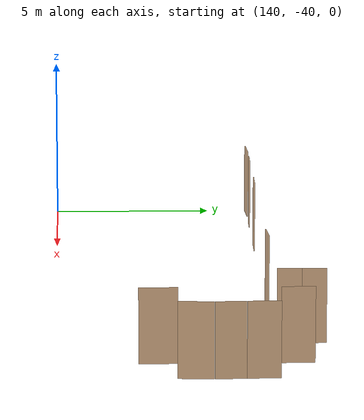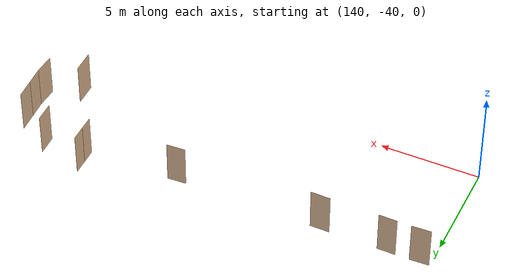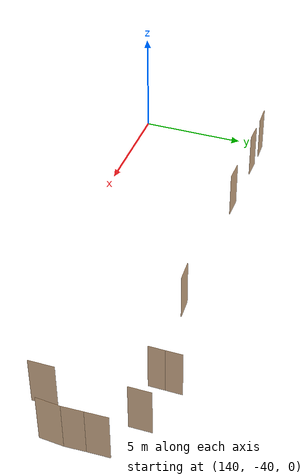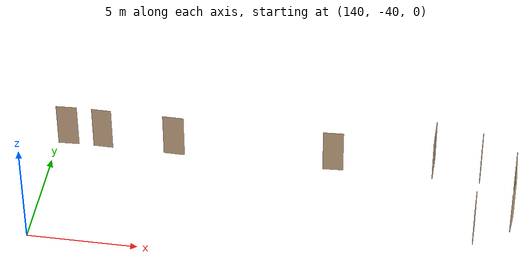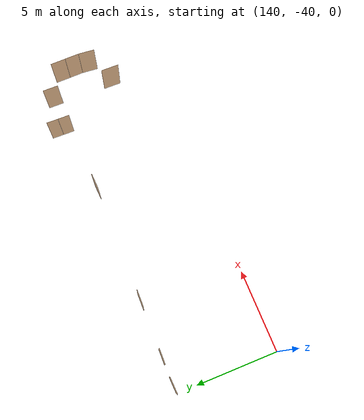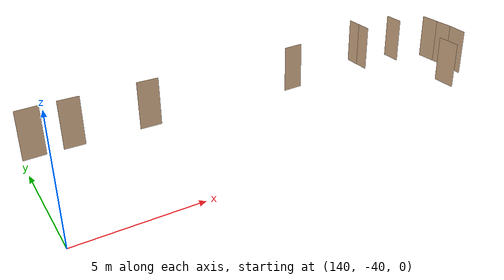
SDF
<sdf version="1.7">
 <world name="sim_world">
  <model name="puerta35">
   <pose>140.5296218849793 -33.72140576155233 0.0 0 0 0.04530531547976472</pose>
   <link name="right">
    <pose>0 0 1.11 0 0 0</pose>
    <visual name="right_visual">
     <geometry><box><size>0.9617181044074916 0.03 2.2</size></box></geometry>
     <material>
      <ambient>0.5 0.25 0 0.6</ambient>
      <diffuse>0.5 0.25 0 0.6</diffuse>
      <pbr><metal><metalness>0.0</metalness></metal></pbr>
     </material>
    </visual>
    <collision name="right_collision">
     <geometry><box><size>0.9617181044074916 0.03 2.2</size></box></geometry>
     <surface><contact><collide_bitmask>0x02</collide_bitmask></contact></surface>
    </collision>
    <inertial>
     <mass>50.0</mass>
     <inertia><ixx>20.17041666666667</ixx><iyy>24.02042380143808</iyy><izz>3.8575071347714127</izz></inertia>
    </inertial>
   </link>
   <joint name="right_joint" type="revolute">
    <parent>world</parent>
    <child>right</child>
    <axis><xyz>0 0 1</xyz><limit><lower>0</lower><upper>1.57</upper></limit></axis>
    <pose>0.4858590522037458 0 0 0 0 0</pose>
   </joint>
   <plugin name="register_component" filename="libregister_component.so">
    <component name="Door">
     <v_max_door>0.5</v_max_door>
     <a_max_door>0.3</a_max_door>
     <a_nom_door>0.15</a_nom_door>
     <dx_min_door>0.01</dx_min_door>
     <f_max_door>500.0</f_max_door>
     <ros_interface>true</ros_interface>
     <door name="puerta35" type="SwingDoor" left_joint_name="empty_joint" right_joint_name="right_joint"/>
    </component>
   </plugin>
  </model>
  <model name="puerta38">
   <pose>142.15481805292006 -33.705712326288804 0.0 0 0 3.1278654236406376</pose>
   <link name="right">
    <pose>0 0 1.11 0 0 0</pose>
    <visual name="right_visual">
     <geometry><box><size>0.90951998774932 0.03 2.2</size></box></geometry>
     <material>
      <ambient>0.5 0.25 0 0.6</ambient>
      <diffuse>0.5 0.25 0 0.6</diffuse>
      <pbr><metal><metalness>0.0</metalness></metal></pbr>
     </material>
    </visual>
    <collision name="right_collision">
     <geometry><box><size>0.90951998774932 0.03 2.2</size></box></geometry>
     <surface><contact><collide_bitmask>0x02</collide_bitmask></contact></surface>
    </collision>
    <inertial>
     <mass>50.0</mass>
     <inertia><ixx>20.17041666666667</ixx><iyy>23.61344420048135</iyy><izz>3.45052753381468</izz></inertia>
    </inertial>
   </link>
   <joint name="right_joint" type="revolute">
    <parent>world</parent>
    <child>right</child>
    <axis><xyz>0 0 -1</xyz><limit><lower>0</lower><upper>1.57</upper></limit></axis>
    <pose>0.45975999387466 0 0 0 0 0</pose>
   </joint>
   <plugin name="register_component" filename="libregister_component.so">
    <component name="Door">
     <v_max_door>0.5</v_max_door>
     <a_max_door>0.3</a_max_door>
     <a_nom_door>0.15</a_nom_door>
     <dx_min_door>0.01</dx_min_door>
     <f_max_door>500.0</f_max_door>
     <ros_interface>true</ros_interface>
     <door name="puerta38" type="SwingDoor" left_joint_name="empty_joint" right_joint_name="right_joint"/>
    </component>
   </plugin>
  </model>
  <model name="puerta39">
   <pose>145.4988030074175 -33.718313355407915 0.0 0 0 3.1287882142276553</pose>
   <link name="right">
    <pose>0 0 1.11 0 0 0</pose>
    <visual name="right_visual">
     <geometry><box><size>0.9724980031824331 0.03 2.2</size></box></geometry>
     <material>
      <ambient>0.5 0.25 0 0.6</ambient>
      <diffuse>0.5 0.25 0 0.6</diffuse>
      <pbr><metal><metalness>0.0</metalness></metal></pbr>
     </material>
    </visual>
    <collision name="right_collision">
     <geometry><box><size>0.9724980031824331 0.03 2.2</size></box></geometry>
     <surface><contact><collide_bitmask>0x02</collide_bitmask></contact></surface>
    </collision>
    <inertial>
     <mass>50.0</mass>
     <inertia><ixx>20.17041666666667</ixx><iyy>24.10730152580759</iyy><izz>3.9443848591409156</izz></inertia>
    </inertial>
   </link>
   <joint name="right_joint" type="revolute">
    <parent>world</parent>
    <child>right</child>
    <axis><xyz>0 0 -1</xyz><limit><lower>0</lower><upper>1.57</upper></limit></axis>
    <pose>0.49124900159121654 0 0 0 0 0</pose>
   </joint>
   <plugin name="register_component" filename="libregister_component.so">
    <component name="Door">
     <v_max_door>0.5</v_max_door>
     <a_max_door>0.3</a_max_door>
     <a_nom_door>0.15</a_nom_door>
     <dx_min_door>0.01</dx_min_door>
     <f_max_door>500.0</f_max_door>
     <ros_interface>true</ros_interface>
     <door name="puerta39" type="SwingDoor" left_joint_name="empty_joint" right_joint_name="right_joint"/>
    </component>
   </plugin>
  </model>
  <model name="puerta41">
   <pose>152.88582499926366 -33.6994223301175 0.0 0 0 -3.088329343828229</pose>
   <link name="right">
    <pose>0 0 1.11 0 0 0</pose>
    <visual name="right_visual">
     <geometry><box><size>0.935976953348451 0.03 2.2</size></box></geometry>
     <material>
      <ambient>0.5 0.25 0 0.6</ambient>
      <diffuse>0.5 0.25 0 0.6</diffuse>
      <pbr><metal><metalness>0.0</metalness></metal></pbr>
     </material>
    </visual>
    <collision name="right_collision">
     <geometry><box><size>0.935976953348451 0.03 2.2</size></box></geometry>
     <surface><contact><collide_bitmask>0x02</collide_bitmask></contact></surface>
    </collision>
    <inertial>
     <mass>50.0</mass>
     <inertia><ixx>20.17041666666667</ixx><iyy>23.816886904997705</iyy><izz>3.653970238331035</izz></inertia>
    </inertial>
   </link>
   <joint name="right_joint" type="revolute">
    <parent>world</parent>
    <child>right</child>
    <axis><xyz>0 0 -1</xyz><limit><lower>0</lower><upper>1.57</upper></limit></axis>
    <pose>0.4729884766742255 0 0 0 0 0</pose>
   </joint>
   <plugin name="register_component" filename="libregister_component.so">
    <component name="Door">
     <v_max_door>0.5</v_max_door>
     <a_max_door>0.3</a_max_door>
     <a_nom_door>0.15</a_nom_door>
     <dx_min_door>0.01</dx_min_door>
     <f_max_door>500.0</f_max_door>
     <ros_interface>true</ros_interface>
     <door name="puerta41" type="SwingDoor" left_joint_name="empty_joint" right_joint_name="right_joint"/>
    </component>
   </plugin>
  </model>
  <model name="puerta43">
   <pose>157.4515207485726 -32.95497288359509 0.0 0 0 -1.5707963267948966</pose>
   <link name="right">
    <pose>0.3596342125303469 0 1.11 0 0 0</pose>
    <visual name="right_visual">
     <geometry><box><size>0.7092684250606938 0.03 2.2</size></box></geometry>
     <material>
      <ambient>0.5 0.25 0 0.6</ambient>
      <diffuse>0.5 0.25 0 0.6</diffuse>
      <pbr><metal><metalness>0.0</metalness></metal></pbr>
     </material>
    </visual>
    <collision name="right_collision">
     <geometry><box><size>0.7092684250606938 0.03 2.2</size></box></geometry>
     <surface><contact><collide_bitmask>0x02</collide_bitmask></contact></surface>
    </collision>
    <inertial>
     <mass>50.0</mass>
     <inertia><ixx>20.17041666666667</ixx><iyy>22.26275707828366</iyy><izz>2.0998404116169875</izz></inertia>
    </inertial>
   </link>
   <joint name="right_joint" type="revolute">
    <parent>world</parent>
    <child>right</child>
    <axis><xyz>0 0 -1</xyz><limit><lower>0</lower><upper>1.57</upper></limit></axis>
    <pose>0.3596342125303469 0 0 0 0 0</pose>
   </joint>
   <link name="left">
    <pose>-0.3596342125303469 0 1.11 0 0 0</pose>
    <visual name="left_visual">
     <geometry><box><size>0.7092684250606938 0.03 2.2</size></box></geometry>
     <material>
      <ambient>0.5 0.25 0 0.6</ambient>
      <diffuse>0.5 0.25 0 0.6</diffuse>
      <pbr><metal><metalness>0.0</metalness></metal></pbr>
     </material>
    </visual>
    <collision name="left_collision">
     <geometry><box><size>0.7092684250606938 0.03 2.2</size></box></geometry>
     <surface><contact><collide_bitmask>0x02</collide_bitmask></contact></surface>
    </collision>
    <inertial>
     <mass>50.0</mass>
     <inertia><ixx>20.17041666666667</ixx><iyy>22.26275707828366</iyy><izz>2.0998404116169875</izz></inertia>
    </inertial>
   </link>
   <joint name="left_joint" type="revolute">
    <parent>world</parent>
    <child>left</child>
    <axis><xyz>0 0 -1</xyz><limit><lower>-1.57</lower><upper>0</upper></limit></axis>
    <pose>-0.3596342125303469 0 0 0 0 0</pose>
   </joint>
   <plugin name="register_component" filename="libregister_component.so">
    <component name="Door">
     <v_max_door>0.5</v_max_door>
     <a_max_door>0.3</a_max_door>
     <a_nom_door>0.15</a_nom_door>
     <dx_min_door>0.01</dx_min_door>
     <f_max_door>500.0</f_max_door>
     <ros_interface>true</ros_interface>
     <door name="puerta43" type="DoubleSwingDoor" left_joint_name="left_joint" right_joint_name="right_joint"/>
    </component>
   </plugin>
  </model>
  <model name="puerta44">
   <pose>159.6115979956159 -33.18932257372337 0.0 0 0 -1.5578258165143803</pose>
   <link name="right">
    <pose>0 0 1.11 0 0 0</pose>
    <visual name="right_visual">
     <geometry><box><size>0.9599190554686117 0.03 2.2</size></box></geometry>
     <material>
      <ambient>0.5 0.25 0 0.6</ambient>
      <diffuse>0.5 0.25 0 0.6</diffuse>
      <pbr><metal><metalness>0.0</metalness></metal></pbr>
     </material>
    </visual>
    <collision name="right_collision">
     <geometry><box><size>0.9599190554686117 0.03 2.2</size></box></geometry>
     <surface><contact><collide_bitmask>0x02</collide_bitmask></contact></surface>
    </collision>
    <inertial>
     <mass>50.0</mass>
     <inertia><ixx>20.17041666666667</ixx><iyy>24.006019137715636</iyy><izz>3.843102471048965</izz></inertia>
    </inertial>
   </link>
   <joint name="right_joint" type="revolute">
    <parent>world</parent>
    <child>right</child>
    <axis><xyz>0 0 -1</xyz><limit><lower>0</lower><upper>1.57</upper></limit></axis>
    <pose>0.48495952773430584 0 0 0 0 0</pose>
   </joint>
   <plugin name="register_component" filename="libregister_component.so">
    <component name="Door">
     <v_max_door>0.5</v_max_door>
     <a_max_door>0.3</a_max_door>
     <a_nom_door>0.15</a_nom_door>
     <dx_min_door>0.01</dx_min_door>
     <f_max_door>500.0</f_max_door>
     <ros_interface>true</ros_interface>
     <door name="puerta44" type="SwingDoor" left_joint_name="empty_joint" right_joint_name="right_joint"/>
    </component>
   </plugin>
  </model>
  <model name="puerta45">
   <pose>161.22375136213122 -34.22841311180204 0.0 0 0 -1.531346012917316</pose>
   <link name="right">
    <pose>0 0 1.11 0 0 0</pose>
    <visual name="right_visual">
     <geometry><box><size>0.9479607575167356 0.03 2.2</size></box></geometry>
     <material>
      <ambient>0.5 0.25 0 0.6</ambient>
      <diffuse>0.5 0.25 0 0.6</diffuse>
      <pbr><metal><metalness>0.0</metalness></metal></pbr>
     </material>
    </visual>
    <collision name="right_collision">
     <geometry><box><size>0.9479607575167356 0.03 2.2</size></box></geometry>
     <surface><contact><collide_bitmask>0x02</collide_bitmask></contact></surface>
    </collision>
    <inertial>
     <mass>50.0</mass>
     <inertia><ixx>20.17041666666667</ixx><iyy>23.910956657465434</iyy><izz>3.7480399907987634</izz></inertia>
    </inertial>
   </link>
   <joint name="right_joint" type="revolute">
    <parent>world</parent>
    <child>right</child>
    <axis><xyz>0 0 -1</xyz><limit><lower>0</lower><upper>1.57</upper></limit></axis>
    <pose>0.4789803787583678 0 0 0 0 0</pose>
   </joint>
   <plugin name="register_component" filename="libregister_component.so">
    <component name="Door">
     <v_max_door>0.5</v_max_door>
     <a_max_door>0.3</a_max_door>
     <a_nom_door>0.15</a_nom_door>
     <dx_min_door>0.01</dx_min_door>
     <f_max_door>500.0</f_max_door>
     <ros_interface>true</ros_interface>
     <door name="puerta45" type="SwingDoor" left_joint_name="empty_joint" right_joint_name="right_joint"/>
    </component>
   </plugin>
  </model>
  <model name="puerta46">
   <pose>161.26153341271203 -35.154136461361745 0.0 0 0 1.613022082929262</pose>
   <link name="right">
    <pose>0 0 1.11 0 0 0</pose>
    <visual name="right_visual">
     <geometry><box><size>0.8850291015224417 0.03 2.2</size></box></geometry>
     <material>
      <ambient>0.5 0.25 0 0.6</ambient>
      <diffuse>0.5 0.25 0 0.6</diffuse>
      <pbr><metal><metalness>0.0</metalness></metal></pbr>
     </material>
    </visual>
    <collision name="right_collision">
     <geometry><box><size>0.8850291015224417 0.03 2.2</size></box></geometry>
     <surface><contact><collide_bitmask>0x02</collide_bitmask></contact></surface>
    </collision>
    <inertial>
     <mass>50.0</mass>
     <inertia><ixx>20.17041666666667</ixx><iyy>23.430318793923423</iyy><izz>3.2674021272567524</izz></inertia>
    </inertial>
   </link>
   <joint name="right_joint" type="revolute">
    <parent>world</parent>
    <child>right</child>
    <axis><xyz>0 0 1</xyz><limit><lower>0</lower><upper>1.57</upper></limit></axis>
    <pose>0.4475145507612209 0 0 0 0 0</pose>
   </joint>
   <plugin name="register_component" filename="libregister_component.so">
    <component name="Door">
     <v_max_door>0.5</v_max_door>
     <a_max_door>0.3</a_max_door>
     <a_nom_door>0.15</a_nom_door>
     <dx_min_door>0.01</dx_min_door>
     <f_max_door>500.0</f_max_door>
     <ros_interface>true</ros_interface>
     <door name="puerta46" type="SwingDoor" left_joint_name="empty_joint" right_joint_name="right_joint"/>
    </component>
   </plugin>
  </model>
  <model name="puerta47">
   <pose>161.24264238742165 -36.11766289827876 0.0 0 0 -1.6438289858346564</pose>
   <link name="right">
    <pose>0 0 1.11 0 0 0</pose>
    <visual name="right_visual">
     <geometry><box><size>1.025582129422562 0.03 2.2</size></box></geometry>
     <material>
      <ambient>0.5 0.25 0 0.6</ambient>
      <diffuse>0.5 0.25 0 0.6</diffuse>
      <pbr><metal><metalness>0.0</metalness></metal></pbr>
     </material>
    </visual>
    <collision name="right_collision">
     <geometry><box><size>1.025582129422562 0.03 2.2</size></box></geometry>
     <surface><contact><collide_bitmask>0x02</collide_bitmask></contact></surface>
    </collision>
    <inertial>
     <mass>50.0</mass>
     <inertia><ixx>20.17041666666667</ixx><iyy>24.549244600795493</iyy><izz>4.386327934128819</izz></inertia>
    </inertial>
   </link>
   <joint name="right_joint" type="revolute">
    <parent>world</parent>
    <child>right</child>
    <axis><xyz>0 0 -1</xyz><limit><lower>0</lower><upper>1.57</upper></limit></axis>
    <pose>0.517791064711281 0 0 0 0 0</pose>
   </joint>
   <plugin name="register_component" filename="libregister_component.so">
    <component name="Door">
     <v_max_door>0.5</v_max_door>
     <a_max_door>0.3</a_max_door>
     <a_nom_door>0.15</a_nom_door>
     <dx_min_door>0.01</dx_min_door>
     <f_max_door>500.0</f_max_door>
     <ros_interface>true</ros_interface>
     <door name="puerta47" type="SwingDoor" left_joint_name="empty_joint" right_joint_name="right_joint"/>
    </component>
   </plugin>
  </model>
  <model name="puerta49">
   <pose>159.6233365168988 -37.1172463701042 0.0 0 0 -1.561045129849499</pose>
   <link name="right">
    <pose>0 0 1.11 0 0 0</pose>
    <visual name="right_visual">
     <geometry><box><size>1.1075266973527584 0.03 2.2</size></box></geometry>
     <material>
      <ambient>0.5 0.25 0 0.6</ambient>
      <diffuse>0.5 0.25 0 0.6</diffuse>
      <pbr><metal><metalness>0.0</metalness></metal></pbr>
     </material>
    </visual>
    <collision name="right_collision">
     <geometry><box><size>1.1075266973527584 0.03 2.2</size></box></geometry>
     <surface><contact><collide_bitmask>0x02</collide_bitmask></contact></surface>
    </collision>
    <inertial>
     <mass>50.0</mass>
     <inertia><ixx>20.17041666666667</ixx><iyy>25.27756410562129</iyy><izz>5.114647438954619</izz></inertia>
    </inertial>
   </link>
   <joint name="right_joint" type="revolute">
    <parent>world</parent>
    <child>right</child>
    <axis><xyz>0 0 -1</xyz><limit><lower>0</lower><upper>1.57</upper></limit></axis>
    <pose>0.5587633486763792 0 0 0 0 0</pose>
   </joint>
   <plugin name="register_component" filename="libregister_component.so">
    <component name="Door">
     <v_max_door>0.5</v_max_door>
     <a_max_door>0.3</a_max_door>
     <a_nom_door>0.15</a_nom_door>
     <dx_min_door>0.01</dx_min_door>
     <f_max_door>500.0</f_max_door>
     <ros_interface>true</ros_interface>
     <door name="puerta49" type="SwingDoor" left_joint_name="empty_joint" right_joint_name="right_joint"/>
    </component>
   </plugin>
  </model>
 </world>
</sdf>
